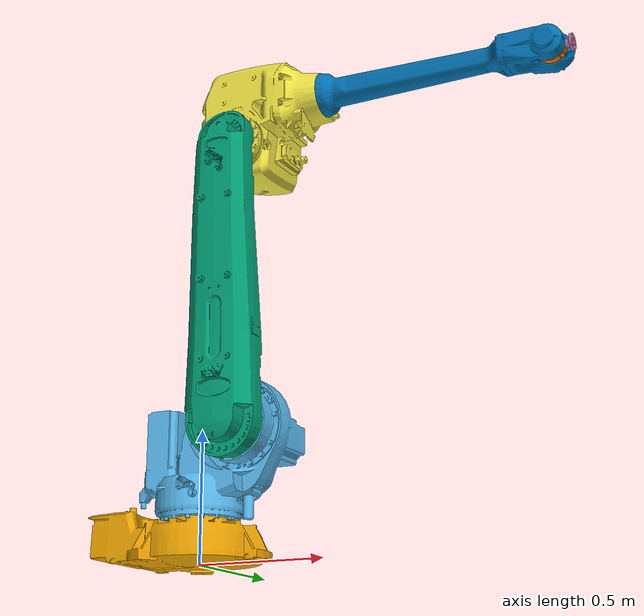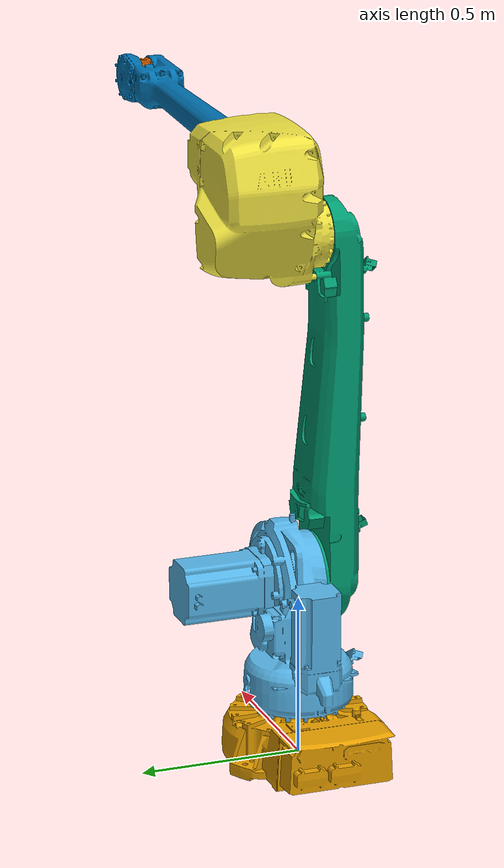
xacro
<?xml version="1.0" ?>
<robot name="abb_irb4600_20_250" xmlns:xacro="http://ros.org/wiki/xacro">
  <xacro:arg name="use_fake_hardware" default="true"/>
  <xacro:property name="use_fake_hardware" value="$(arg use_fake_hardware)"/>
  <xacro:arg name="rws_ip" default="None"/>
  <xacro:property name="rws_ip" value="$(arg rws_ip)"/>
  <xacro:arg name="rws_port" default="80"/>
  <xacro:property name="rws_port" value="$(arg rws_port)"/>
  <!-- Robot description -->
  <xacro:include filename="$(find abb_irb4600_support)/urdf/irb4600_20_250_macro.xacro"/>
  <xacro:abb_irb4600_20_250 prefix=""/>

  <!-- ros2_control -->
  <xacro:include filename="$(find abb_irb4600_support)/urdf/irb4600.ros2_control.xacro" />
  <xacro:abb_ros2_control
    name="ABBMultiInterfaceHardware"
    prefix=""
    use_fake_hardware="${use_fake_hardware}"
    rws_ip="${rws_ip}"
    rws_port="${rws_port}"/>
</robot>

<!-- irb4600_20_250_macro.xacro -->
<robot xmlns:xacro="http://ros.org/wiki/xacro">
  <xacro:macro name="abb_irb4600_20_250" params="prefix">
    <xacro:include filename="$(find abb_resources)/urdf/common_materials.xacro"/>

    <!-- link list -->
    <link name="${prefix}base_link">
      <collision name="collision">
        <geometry>
          <mesh filename="package://abb_irb4600_support/meshes/irb4600/collision/base_link.stl"/>
        </geometry>
        <xacro:material_abb_yellow />
      </collision>
      <visual name="visual">
        <geometry>
          <mesh filename="package://abb_irb4600_support/meshes/irb4600/visual/base_link.dae"/>
        </geometry>
        <xacro:material_abb_graphite_white/>
      </visual>
    </link>
    <link name="${prefix}link_1">
      <collision name="collision">
        <geometry>
          <mesh filename="package://abb_irb4600_support/meshes/irb4600/collision/link_1.stl"/>
        </geometry>
        <xacro:material_abb_yellow />
      </collision>
      <visual name="visual">
        <geometry>
          <mesh filename="package://abb_irb4600_support/meshes/irb4600/visual/link_1.dae"/>
        </geometry>
        <xacro:material_abb_graphite_white/>
      </visual>
    </link>
    <link name="${prefix}link_2">
      <collision name="collision">
        <geometry>
          <mesh filename="package://abb_irb4600_support/meshes/irb4600_20_250/collision/link_2.stl"/>
        </geometry>
        <xacro:material_abb_yellow />
      </collision>
      <visual name="visual">
        <geometry>
          <mesh filename="package://abb_irb4600_support/meshes/irb4600_20_250/visual/link_2.dae"/>
        </geometry>
        <xacro:material_abb_graphite_white/>
      </visual>
    </link>
    <link name="${prefix}link_3">
      <collision name="collision">
        <geometry>
          <mesh filename="package://abb_irb4600_support/meshes/irb4600_20_250/collision/link_3.stl"/>
        </geometry>
        <xacro:material_abb_yellow />
      </collision>
      <visual name="visual">
        <geometry>
          <mesh filename="package://abb_irb4600_support/meshes/irb4600_20_250/visual/link_3.dae"/>
        </geometry>
        <xacro:material_abb_graphite_white/>
      </visual>
    </link>
    <link name="${prefix}link_4">
      <collision name="collision">
        <geometry>
          <mesh filename="package://abb_irb4600_support/meshes/irb4600_20_250/collision/link_4.stl"/>
        </geometry>
        <xacro:material_abb_yellow />
      </collision>
      <visual name="visual">
        <geometry>
          <mesh filename="package://abb_irb4600_support/meshes/irb4600_20_250/visual/link_4.dae"/>
        </geometry>
        <xacro:material_abb_graphite_white/>
      </visual>
    </link>
    <link name="${prefix}link_5">
      <collision name="collision">
        <geometry>
          <mesh filename="package://abb_irb4600_support/meshes/irb4600_20_250/collision/link_5.stl"/>
        </geometry>
        <xacro:material_abb_yellow />
      </collision>
      <visual name="visual">
        <geometry>
          <mesh filename="package://abb_irb4600_support/meshes/irb4600_20_250/visual/link_5.dae"/>
        </geometry>
        <xacro:material_abb_graphite_white/>
      </visual>
    </link>
    <link name="${prefix}link_6">
      <collision name="collision">
        <geometry>
          <mesh filename="package://abb_irb4600_support/meshes/irb4600_20_250/collision/link_6.stl"/>
        </geometry>
        <xacro:material_abb_yellow />
      </collision>
      <visual name="visual">
        <geometry>
          <mesh filename="package://abb_irb4600_support/meshes/irb4600_20_250/visual/link_6.dae"/>
        </geometry>
        <xacro:material_abb_graphite_white/>
      </visual>
    </link>
    <!-- end of link list -->

    <!-- joint list -->
    <joint type="revolute" name="${prefix}joint_1">
      <origin xyz="0 0 0.495" rpy="0 0 0"/>
      <axis xyz="0 0 1"/>
      <parent link="${prefix}base_link"/>
      <child link="${prefix}link_1"/>
      <limit effort="0" lower="${radians(-180)}" upper="${radians(180)}" velocity="${radians(175)}"/>
    </joint>
    <joint type="revolute" name="${prefix}joint_2">
      <origin xyz="0.175 0 0" rpy="0 0 0"/>
      <axis xyz="0 1 0"/>
      <parent link="${prefix}link_1"/>
      <child link="${prefix}link_2"/>
      <limit effort="0" lower="${radians(-90)}" upper="${radians(150)}" velocity="${radians(175)}"/>
    </joint>
    <joint type="revolute" name="${prefix}joint_3">
      <origin xyz="0 0 1.095" rpy="0 0 0"/>
      <axis xyz="0 1 0"/>
      <parent link="${prefix}link_2"/>
      <child link="${prefix}link_3"/>
      <limit effort="0" lower="${radians(-180)}" upper="${radians(75)}" velocity="${radians(175)}"/>
    </joint>
    <joint type="revolute" name="${prefix}joint_4">
      <origin xyz="0 0 0.175" rpy="0 0 0"/>
      <axis xyz="1 0 0"/>
      <parent link="${prefix}link_3"/>
      <child link="${prefix}link_4"/>
      <limit effort="0" lower="${radians(-400)}" upper="${radians(400)}" velocity="${radians(360)}"/>
    </joint>
    <joint type="revolute" name="${prefix}joint_5">
      <origin xyz="1.2305 0 0" rpy="0 0 0"/>
      <axis xyz="0 1 0"/>
      <parent link="${prefix}link_4"/>
      <child link="${prefix}link_5"/>
      <limit effort="0" lower="${radians(-125)}" upper="${radians(120)}" velocity="${radians(360)}"/>
    </joint>
    <joint type="revolute" name="${prefix}joint_6">
      <origin xyz="0.085 0 0" rpy="0 0 0"/>
      <axis xyz="1 0 0"/>
      <parent link="${prefix}link_5"/>
      <child link="${prefix}link_6"/>
      <limit effort="0" lower="${radians(-400)}" upper="${radians(400)}" velocity="${radians(500)}"/>
    </joint>
    <!-- end of joint list -->

    <!-- ROS-Industrial 'base' frame- base_link to ABB World Coordinates transform -->
    <link name="${prefix}base" />
    <joint name="${prefix}base_link-base" type="fixed">
      <origin xyz="0 0 0" rpy="0 0 0"/>
      <parent link="${prefix}base_link"/>
      <child link="${prefix}base"/>
    </joint>

    <!-- ROS-Industrial 'flange' frame- attachment point for EEF models -->
    <link name="${prefix}flange"/>
    <joint type="fixed" name="${prefix}joint_6-flange">
      <origin xyz="0 0 0" rpy="0 0 0"/>
      <parent link="${prefix}link_6"/>
      <child link="${prefix}flange"/>
    </joint>

    <!-- ROS-Industrial 'tool0' frame- all-zeros tool frame -->
    <link name="${prefix}tool0" />
    <joint name="${prefix}link_6-tool0" type="fixed">
      <origin xyz="0 0 0" rpy="0 ${radians(90)} 0" />
      <parent link="${prefix}flange" />
      <child link="${prefix}tool0" />
    </joint>

  </xacro:macro>
</robot>
